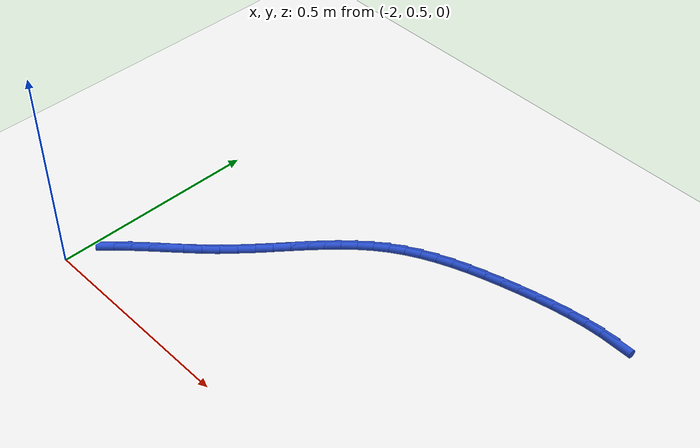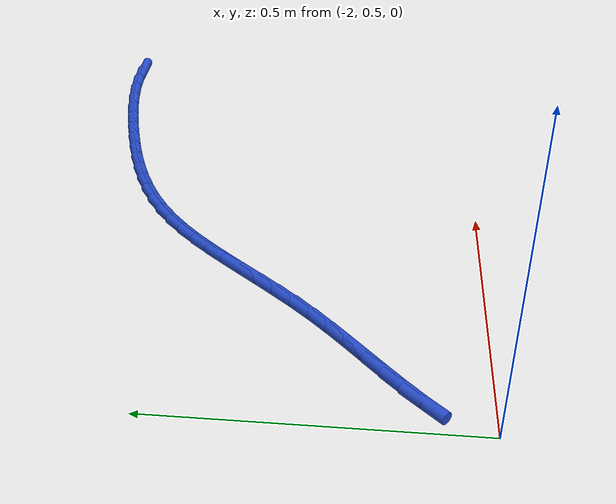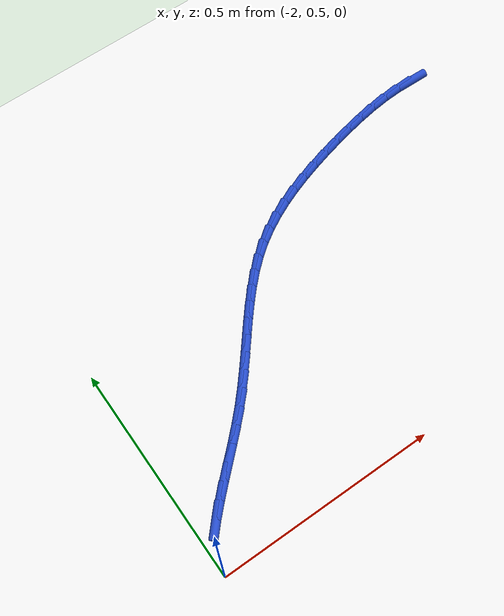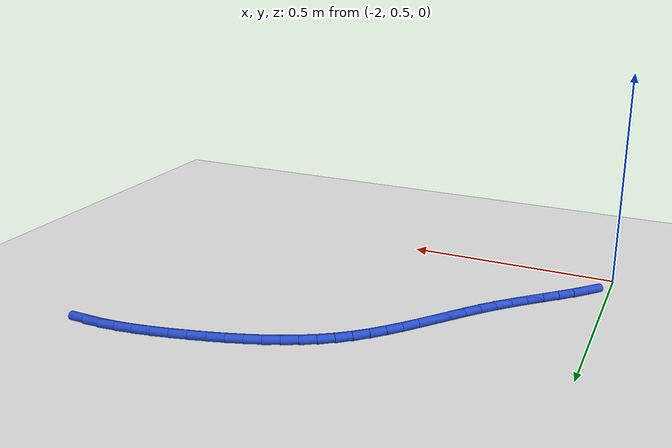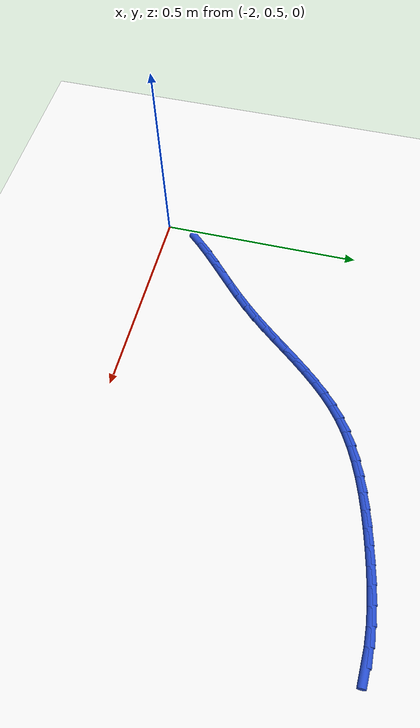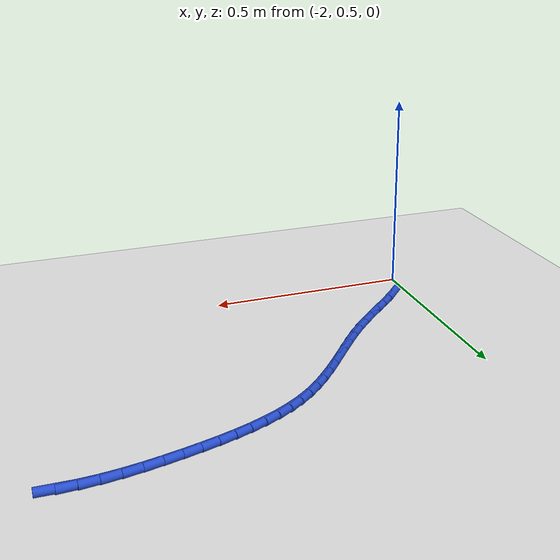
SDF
<sdf version="1.6">
 <world name="default">
  <model name="ground_plane">
   <static>1</static>
   <link name="link">
    <collision name="collision">
     <geometry><plane><normal>0 0 1</normal><size>100 100</size></plane></geometry>
     <surface><friction><ode><mu>100</mu><mu2>50</mu2></ode></friction></surface>
    </collision>
    <visual name="visual">
     <cast_shadows>0</cast_shadows>
     <geometry><plane><normal>0 0 1</normal><size>100 100</size></plane></geometry>
     <material>
      <script><uri>file://media/materials/scripts/gazebo.material</uri><name>Gazebo/WhiteGlow</name></script>
     </material>
    </visual>
   </link>
  </model>
  <model name="line">
   <link name="link_44">
    <pose>-0.9992346805124975 1.188676527520133 0.01 0 1.57 -0.01971273679869438</pose>
    <collision name="collision">
     <geometry><cylinder><radius>0.01</radius><length>0.08</length></cylinder></geometry>
    </collision>
    <visual name="visual">
     <material>
      <script><name>Gazebo/Blue</name><uri>file://media/materials/scripts/gazebo.material</uri></script>
     </material>
     <geometry><cylinder><radius>0.01</radius><length>0.08</length></cylinder></geometry>
    </visual>
   </link>
   <link name="link_45">
    <pose>-1.0381212168569767 1.1894431868845738 0.01 0 1.57 0.05325782257838895</pose>
    <collision name="collision">
     <geometry><cylinder><radius>0.01</radius><length>0.08</length></cylinder></geometry>
    </collision>
    <visual name="visual">
     <material>
      <script><name>Gazebo/Blue</name><uri>file://media/materials/scripts/gazebo.material</uri></script>
     </material>
     <geometry><cylinder><radius>0.01</radius><length>0.08</length></cylinder></geometry>
    </visual>
   </link>
   <link name="link_46">
    <pose>-1.078040319520561 1.1873151700509688 0.01 0 1.57 0.11257398742156893</pose>
    <collision name="collision">
     <geometry><cylinder><radius>0.01</radius><length>0.08</length></cylinder></geometry>
    </collision>
    <visual name="visual">
     <material>
      <script><name>Gazebo/Blue</name><uri>file://media/materials/scripts/gazebo.material</uri></script>
     </material>
     <geometry><cylinder><radius>0.01</radius><length>0.08</length></cylinder></geometry>
    </visual>
   </link>
   <link name="link_47">
    <pose>-1.1186270697717626 1.182726758512229 0.01 0 1.57 0.16037664011778482</pose>
    <collision name="collision">
     <geometry><cylinder><radius>0.01</radius><length>0.08</length></cylinder></geometry>
    </collision>
    <visual name="visual">
     <material>
      <script><name>Gazebo/Blue</name><uri>file://media/materials/scripts/gazebo.material</uri></script>
     </material>
     <geometry><cylinder><radius>0.01</radius><length>0.08</length></cylinder></geometry>
    </visual>
   </link>
   <link name="link_48">
    <pose>-1.159516548879094 1.1761122337612646 0.01 0 1.57 0.19835859251996052</pose>
    <collision name="collision">
     <geometry><cylinder><radius>0.01</radius><length>0.08</length></cylinder></geometry>
    </collision>
    <visual name="visual">
     <material>
      <script><name>Gazebo/Blue</name><uri>file://media/materials/scripts/gazebo.material</uri></script>
     </material>
     <geometry><cylinder><radius>0.01</radius><length>0.08</length></cylinder></geometry>
    </visual>
   </link>
   <link name="link_49">
    <pose>-1.2003438381110687 1.1679058772909883 0.01 0 1.57 0.22775719018973978</pose>
    <collision name="collision">
     <geometry><cylinder><radius>0.01</radius><length>0.08</length></cylinder></geometry>
    </collision>
    <visual name="visual">
     <material>
      <script><name>Gazebo/Blue</name><uri>file://media/materials/scripts/gazebo.material</uri></script>
     </material>
     <geometry><cylinder><radius>0.01</radius><length>0.08</length></cylinder></geometry>
    </visual>
   </link>
   <link name="link_50">
    <pose>-1.2407440187361982 1.1585419705943107 0.01 0 1.57 0.25022045598949655</pose>
    <collision name="collision">
     <geometry><cylinder><radius>0.01</radius><length>0.08</length></cylinder></geometry>
    </collision>
    <visual name="visual">
     <material>
      <script><name>Gazebo/Blue</name><uri>file://media/materials/scripts/gazebo.material</uri></script>
     </material>
     <geometry><cylinder><radius>0.01</radius><length>0.08</length></cylinder></geometry>
    </visual>
   </link>
   <link name="link_51">
    <pose>-1.2803678609756328 1.1484150372153858 0.01 0 1.57 0.27448541488182415</pose>
    <collision name="collision">
     <geometry><cylinder><radius>0.01</radius><length>0.08</length></cylinder></geometry>
    </collision>
    <visual name="visual">
     <material>
      <script><name>Gazebo/Blue</name><uri>file://media/materials/scripts/gazebo.material</uri></script>
     </material>
     <geometry><cylinder><radius>0.01</radius><length>0.08</length></cylinder></geometry>
    </visual>
   </link>
   <link name="link_52">
    <pose>-1.319019478860041 1.1375310065415483 0.01 0 1.57 0.30565145141745476</pose>
    <collision name="collision">
     <geometry><cylinder><radius>0.01</radius><length>0.08</length></cylinder></geometry>
    </collision>
    <visual name="visual">
     <material>
      <script><name>Gazebo/Blue</name><uri>file://media/materials/scripts/gazebo.material</uri></script>
     </material>
     <geometry><cylinder><radius>0.01</radius><length>0.08</length></cylinder></geometry>
    </visual>
   </link>
   <link name="link_53">
    <pose>-1.3565896739133052 1.125676130012661 0.01 0 1.57 0.3442156234422525</pose>
    <collision name="collision">
     <geometry><cylinder><radius>0.01</radius><length>0.08</length></cylinder></geometry>
    </collision>
    <visual name="visual">
     <material>
      <script><name>Gazebo/Blue</name><uri>file://media/materials/scripts/gazebo.material</uri></script>
     </material>
     <geometry><cylinder><radius>0.01</radius><length>0.08</length></cylinder></geometry>
    </visual>
   </link>
   <link name="link_54">
    <pose>-1.392970230092997 1.1126341694474453 0.01 0 1.57 0.39059399532635397</pose>
    <collision name="collision">
     <geometry><cylinder><radius>0.01</radius><length>0.08</length></cylinder></geometry>
    </collision>
    <visual name="visual">
     <material>
      <script><name>Gazebo/Blue</name><uri>file://media/materials/scripts/gazebo.material</uri></script>
     </material>
     <geometry><cylinder><radius>0.01</radius><length>0.08</length></cylinder></geometry>
    </visual>
   </link>
   <link name="link_55">
    <pose>-1.4280529313566865 1.0981888866646217 0.01 0 1.57 0.44510527132764954</pose>
    <collision name="collision">
     <geometry><cylinder><radius>0.01</radius><length>0.08</length></cylinder></geometry>
    </collision>
    <visual name="visual">
     <material>
      <script><name>Gazebo/Blue</name><uri>file://media/materials/scripts/gazebo.material</uri></script>
     </material>
     <geometry><cylinder><radius>0.01</radius><length>0.08</length></cylinder></geometry>
    </visual>
   </link>
   <link name="link_56">
    <pose>-1.4617295616619441 1.0821240434829122 0.01 0 1.57 0.5078744594809679</pose>
    <collision name="collision">
     <geometry><cylinder><radius>0.01</radius><length>0.08</length></cylinder></geometry>
    </collision>
    <visual name="visual">
     <material>
      <script><name>Gazebo/Blue</name><uri>file://media/materials/scripts/gazebo.material</uri></script>
     </material>
     <geometry><cylinder><radius>0.01</radius><length>0.08</length></cylinder></geometry>
    </visual>
   </link>
   <link name="link_57">
    <pose>-1.4938919049663402 1.0642234017210381 0.01 0 1.57 0.5787145521718183</pose>
    <collision name="collision">
     <geometry><cylinder><radius>0.01</radius><length>0.08</length></cylinder></geometry>
    </collision>
    <visual name="visual">
     <material>
      <script><name>Gazebo/Blue</name><uri>file://media/materials/scripts/gazebo.material</uri></script>
     </material>
     <geometry><cylinder><radius>0.01</radius><length>0.08</length></cylinder></geometry>
    </visual>
   </link>
   <link name="link_58">
    <pose>-1.5244317452274454 1.0442707231977202 0.01 0 1.57 0.6561608870835796</pose>
    <collision name="collision">
     <geometry><cylinder><radius>0.01</radius><length>0.08</length></cylinder></geometry>
    </collision>
    <visual name="visual">
     <material>
      <script><name>Gazebo/Blue</name><uri>file://media/materials/scripts/gazebo.material</uri></script>
     </material>
     <geometry><cylinder><radius>0.01</radius><length>0.08</length></cylinder></geometry>
    </visual>
   </link>
   <link name="link_59">
    <pose>-1.553260004145151 1.022073782624647 0.01 0 1.57 0.7283613619042232</pose>
    <collision name="collision">
     <geometry><cylinder><radius>0.01</radius><length>0.08</length></cylinder></geometry>
    </collision>
    <visual name="visual">
     <material>
      <script><name>Gazebo/Blue</name><uri>file://media/materials/scripts/gazebo.material</uri></script>
     </material>
     <geometry><cylinder><radius>0.01</radius><length>0.08</length></cylinder></geometry>
    </visual>
   </link>
   <link name="link_60">
    <pose>-1.5805324416438782 0.9977475630550663 0.01 0 1.57 0.7870557928596922</pose>
    <collision name="collision">
     <geometry><cylinder><radius>0.01</radius><length>0.08</length></cylinder></geometry>
    </collision>
    <visual name="visual">
     <material>
      <script><name>Gazebo/Blue</name><uri>file://media/materials/scripts/gazebo.material</uri></script>
     </material>
     <geometry><cylinder><radius>0.01</radius><length>0.08</length></cylinder></geometry>
    </visual>
   </link>
   <link name="link_61">
    <pose>-1.6065740882779331 0.971619438191532 0.01 0 1.57 0.8319944187781226</pose>
    <collision name="collision">
     <geometry><cylinder><radius>0.01</radius><length>0.08</length></cylinder></geometry>
    </collision>
    <visual name="visual">
     <material>
      <script><name>Gazebo/Blue</name><uri>file://media/materials/scripts/gazebo.material</uri></script>
     </material>
     <geometry><cylinder><radius>0.01</radius><length>0.08</length></cylinder></geometry>
    </visual>
   </link>
   <link name="link_62">
    <pose>-1.6317133504019103 0.944021017488631 0.01 0 1.57 0.8635060251961109</pose>
    <collision name="collision">
     <geometry><cylinder><radius>0.01</radius><length>0.08</length></cylinder></geometry>
    </collision>
    <visual name="visual">
     <material>
      <script><name>Gazebo/Blue</name><uri>file://media/materials/scripts/gazebo.material</uri></script>
     </material>
     <geometry><cylinder><radius>0.01</radius><length>0.08</length></cylinder></geometry>
    </visual>
   </link>
   <link name="link_63">
    <pose>-1.6562786343704052 0.9152839104009517 0.01 0 1.57 0.8820896477272588</pose>
    <collision name="collision">
     <geometry><cylinder><radius>0.01</radius><length>0.08</length></cylinder></geometry>
    </collision>
    <visual name="visual">
     <material>
      <script><name>Gazebo/Blue</name><uri>file://media/materials/scripts/gazebo.material</uri></script>
     </material>
     <geometry><cylinder><radius>0.01</radius><length>0.08</length></cylinder></geometry>
    </visual>
   </link>
   <link name="link_64">
    <pose>-1.6805983465380099 0.8857397263830826 0.01 0 1.57 0.8882474621012977</pose>
    <collision name="collision">
     <geometry><cylinder><radius>0.01</radius><length>0.08</length></cylinder></geometry>
    </collision>
    <visual name="visual">
     <material>
      <script><name>Gazebo/Blue</name><uri>file://media/materials/scripts/gazebo.material</uri></script>
     </material>
     <geometry><cylinder><radius>0.01</radius><length>0.08</length></cylinder></geometry>
    </visual>
   </link>
   <link name="link_65">
    <pose>-1.7050008932593208 0.8557200748896113 0.01 0 1.57 0.882400603885393</pose>
    <collision name="collision">
     <geometry><cylinder><radius>0.01</radius><length>0.08</length></cylinder></geometry>
    </collision>
    <visual name="visual">
     <material>
      <script><name>Gazebo/Blue</name><uri>file://media/materials/scripts/gazebo.material</uri></script>
     </material>
     <geometry><cylinder><radius>0.01</radius><length>0.08</length></cylinder></geometry>
    </visual>
   </link>
   <link name="link_66">
    <pose>-1.7298146808889314 0.8255565653751253 0.01 0 1.57 0.8648700391980358</pose>
    <collision name="collision">
     <geometry><cylinder><radius>0.01</radius><length>0.08</length></cylinder></geometry>
    </collision>
    <visual name="visual">
     <material>
      <script><name>Gazebo/Blue</name><uri>file://media/materials/scripts/gazebo.material</uri></script>
     </material>
     <geometry><cylinder><radius>0.01</radius><length>0.08</length></cylinder></geometry>
    </visual>
   </link>
   <link name="link_67">
    <pose>-1.7553681157814363 0.7955808072942137 0.01 0 1.57 0.835908223971081</pose>
    <collision name="collision">
     <geometry><cylinder><radius>0.01</radius><length>0.08</length></cylinder></geometry>
    </collision>
    <visual name="visual">
     <material>
      <script><name>Gazebo/Blue</name><uri>file://media/materials/scripts/gazebo.material</uri></script>
     </material>
     <geometry><cylinder><radius>0.01</radius><length>0.08</length></cylinder></geometry>
    </visual>
   </link>
   <link name="link_68">
    <pose>-1.7819896042914296 0.7661244101014637 0.01 0 1.57 0.7986590974441794</pose>
    <collision name="collision">
     <geometry><cylinder><radius>0.01</radius><length>0.08</length></cylinder></geometry>
    </collision>
    <visual name="visual">
     <material>
      <script><name>Gazebo/Blue</name><uri>file://media/materials/scripts/gazebo.material</uri></script>
     </material>
     <geometry><cylinder><radius>0.01</radius><length>0.08</length></cylinder></geometry>
    </visual>
   </link>
   <link name="link_69">
    <pose>-1.809909153456773 0.737454386350517 0.01 0 1.57 0.7696715150609269</pose>
    <collision name="collision">
     <geometry><cylinder><radius>0.01</radius><length>0.08</length></cylinder></geometry>
    </collision>
    <visual name="visual">
     <material>
      <script><name>Gazebo/Blue</name><uri>file://media/materials/scripts/gazebo.material</uri></script>
     </material>
     <geometry><cylinder><radius>0.01</radius><length>0.08</length></cylinder></geometry>
    </visual>
   </link>
   <link name="link_70">
    <pose>-1.8387913955834743 0.7094665930142284 0.01 0 1.57 0.7543436629798846</pose>
    <collision name="collision">
     <geometry><cylinder><radius>0.01</radius><length>0.08</length></cylinder></geometry>
    </collision>
    <visual name="visual">
     <material>
      <script><name>Gazebo/Blue</name><uri>file://media/materials/scripts/gazebo.material</uri></script>
     </material>
     <geometry><cylinder><radius>0.01</radius><length>0.08</length></cylinder></geometry>
    </visual>
   </link>
   <link name="link_71">
    <pose>-1.8680994243627893 0.6819245815742532 0.01 0 1.57 0.7524393383066788</pose>
    <collision name="collision">
     <geometry><cylinder><radius>0.01</radius><length>0.08</length></cylinder></geometry>
    </collision>
    <visual name="visual">
     <material>
      <script><name>Gazebo/Blue</name><uri>file://media/materials/scripts/gazebo.material</uri></script>
     </material>
     <geometry><cylinder><radius>0.01</radius><length>0.08</length></cylinder></geometry>
    </visual>
   </link>
   <link name="link_72">
    <pose>-1.8972960858764154 0.6545917409622357 0.01 0 1.57 0.7641548379477962</pose>
    <collision name="collision">
     <geometry><cylinder><radius>0.01</radius><length>0.08</length></cylinder></geometry>
    </collision>
    <visual name="visual">
     <material>
      <script><name>Gazebo/Blue</name><uri>file://media/materials/scripts/gazebo.material</uri></script>
     </material>
     <geometry><cylinder><radius>0.01</radius><length>0.08</length></cylinder></geometry>
    </visual>
   </link>
   <link name="link_73">
    <pose>-1.9258442262060511 0.6272314601098192 0.01 0 1.57 0.7901604875656398</pose>
    <collision name="collision">
     <geometry><cylinder><radius>0.01</radius><length>0.08</length></cylinder></geometry>
    </collision>
    <visual name="visual">
     <material>
      <script><name>Gazebo/Blue</name><uri>file://media/materials/scripts/gazebo.material</uri></script>
     </material>
     <geometry><cylinder><radius>0.01</radius><length>0.08</length></cylinder></geometry>
    </visual>
   </link>
   <link name="link_74">
    <pose>-1.9532066914333943 0.5996071279486477 0.01 0 1.57 0.8315919201613304</pose>
    <collision name="collision">
     <geometry><cylinder><radius>0.01</radius><length>0.08</length></cylinder></geometry>
    </collision>
    <visual name="visual">
     <material>
      <script><name>Gazebo/Blue</name><uri>file://media/materials/scripts/gazebo.material</uri></script>
     </material>
     <geometry><cylinder><radius>0.01</radius><length>0.08</length></cylinder></geometry>
    </visual>
   </link>
  </model>
 </world>
</sdf>
